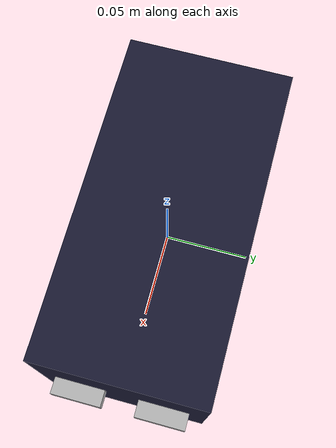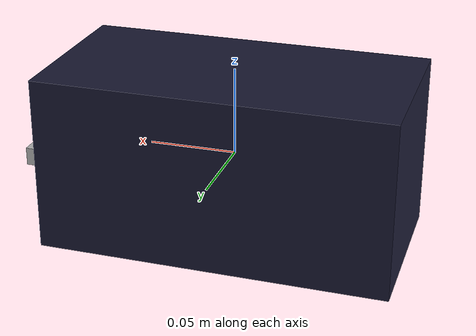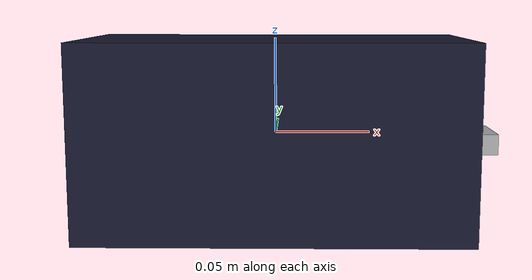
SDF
<?xml version='1.0'?>
<sdf version='1.7'>
  <model name='box'>
<pose>0 0 0 0 0 0</pose>
    <gravity>false</gravity>
    <link name="link">
      <inertial>
        <mass>1.0</mass>
        <inertia>
          <ixx>0.083</ixx>
          <ixy>0.0</ixy>
          <ixz>0.0</ixz>
          <iyy>0.083</iyy>
          <iyz>0.0</iyz>
          <izz>0.083</izz>
        </inertia>
      </inertial>
      <collision name="collision">
        <geometry>
          <box>
            <size>0.2 0.1 0.1</size>
          </box>
        </geometry>
      </collision>
      <visual name="visual">
      <material> <!-- Wheel material -->
          <ambient>0.1 0.1 0.1 1</ambient>
          <diffuse>0.1 0.1 0.2 1</diffuse>
          <specular>0 0 0 0</specular>
          <emissive>1 0 0 1</emissive>
        </material>
        <geometry>
          <box>
            <size>0.2 0.1 0.1</size>
          </box>
        </geometry>
      </visual>

    </link>
    <link name="camera_right_link">
        <gravity>false</gravity>
                <collision name="collision">
          <geometry>
            <box>
              <size>0.01 0.03 0.01</size>
            </box>
          </geometry>
        </collision>
        <visual name="visual">
          <geometry>
            <box>
              <size>0.01 0.03 0.01</size>
            </box>
          </geometry>
        </visual>
        <pose >0.105 -0.025 0 0 0 0</pose>
        <sensor name="camera" type="camera">
          <camera>
            <horizontal_fov>1.047</horizontal_fov>
            <image>
              <width>1920</width>
              <height>1080</height>
            </image>
            <clip>
              <near>0.01</near>
              <far>100</far>
            </clip>
          </camera>
          <always_on>1</always_on>
          <update_rate>30</update_rate>
          <visualize>true</visualize>
          <topic>/camera/raw_right</topic>
        </sensor>
      </link>
    <link name="camera_left_link">

        <gravity>false</gravity>
            <collision name="collision">
          <geometry>
            <box>
              <size>0.01 0.03 0.01</size>
            </box>
          </geometry>
        </collision>
        <visual name="visual">
          <geometry>
            <box>
              <size>0.01 0.03 0.01</size>
            </box>
          </geometry>
        </visual>
        <pose >0.105 0.025 0 0 0 0</pose>
        <sensor name="camera" type="camera">
          <camera>
            <horizontal_fov>1.047</horizontal_fov>
            <image>
              <width>1920</width>
              <height>1080</height>
            </image>
            <clip>
              <near>0.01</near>
              <far>100</far>
            </clip>
          </camera>
          <always_on>1</always_on>
          <update_rate>30</update_rate>
          <visualize>true</visualize>
          <topic>/camera/raw_left</topic>
        </sensor>
    </link>
    <joint name="camera_glue_right" type="fixed">
      <parent>link</parent>
      <child>camera_right_link</child>
    </joint>
    <joint name="camera_glue_left" type="fixed">
      <parent>link</parent>
      <child>camera_left_link</child>
    </joint>

<plugin filename="movePlugin" name="move_Plugin::movePlugin"></plugin>

        </model>

</sdf>
